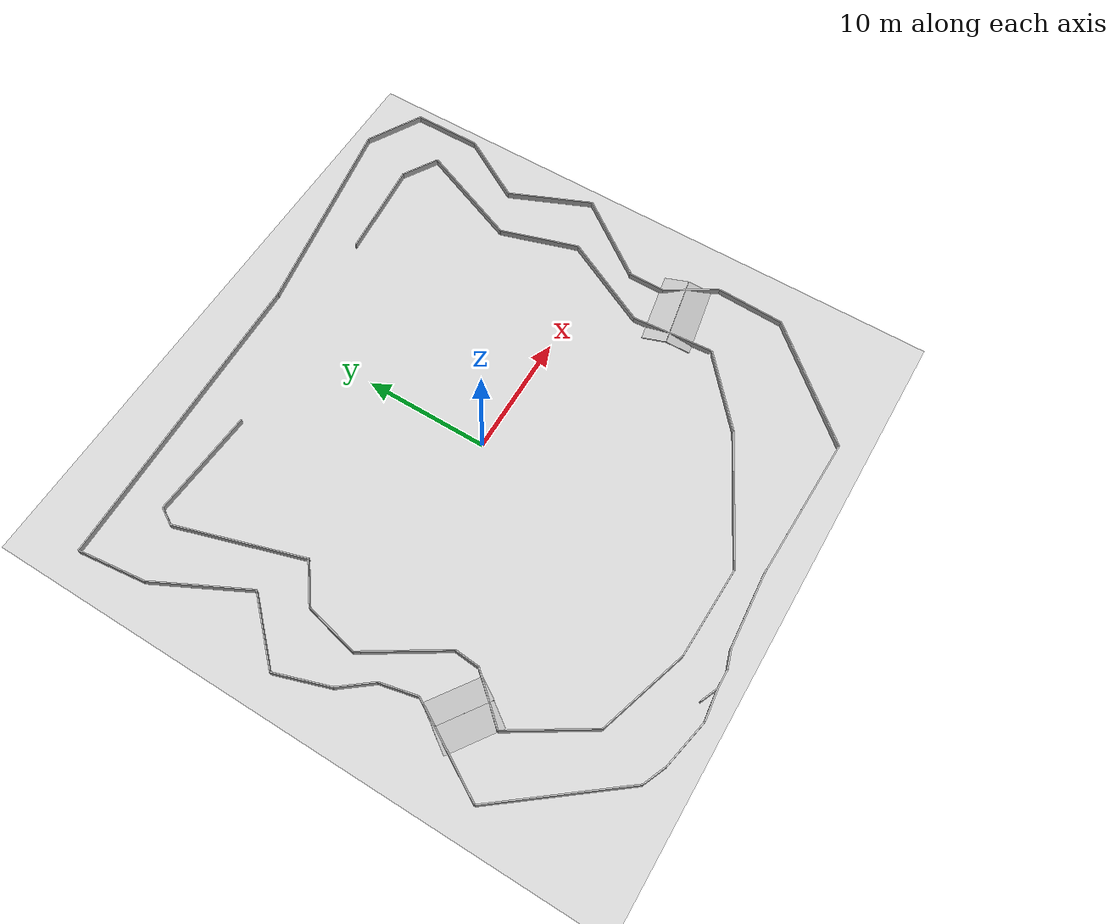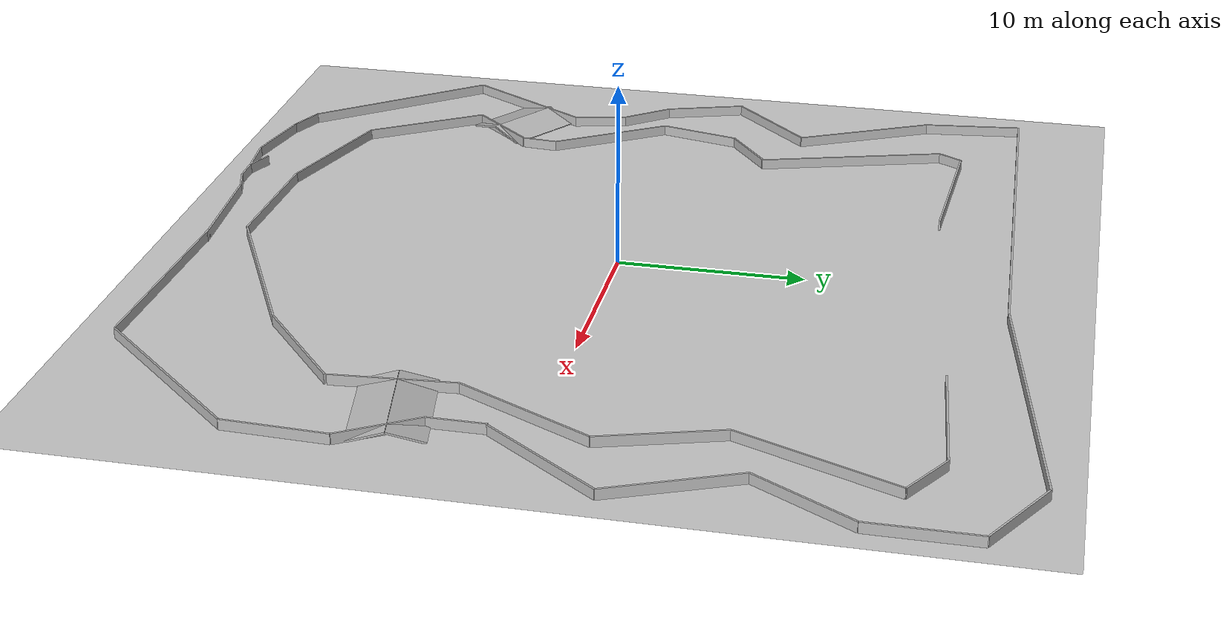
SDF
<sdf version="1.4">
 <world name="default">
  <model name="igvc_basic_ground">
   <static>1</static>
   <link name="link">
    <collision name="collision">
     <geometry><plane><normal>0 0 1</normal><size>50 50</size></plane></geometry>
     <surface><friction><ode><mu>100</mu><mu2>50</mu2></ode></friction></surface>
    </collision>
    <visual name="visual">
     <cast_shadows>0</cast_shadows>
     <geometry><plane><normal>0 0 1</normal><size>50 50</size></plane></geometry>
     <material>
      <script>
       <uri>model://igvc_basic_ground/materials/scripts</uri>
       <uri>model://igvc_basic_ground/materials/textures</uri>
       <name>igvc_basic_ground/Image</name>
      </script>
     </material>
    </visual>
    <velocity_decay><linear>0</linear><angular>0</angular></velocity_decay>
   </link>
  </model>
  <light name="sun" type="directional">
   <pose>0 0 10 0 -0 0</pose>
   <diffuse>0.8 0.8 0.8 1</diffuse>
   <specular>0.2 0.2 0.2 1</specular>
   <attenuation>
    <range>1000</range>
    <constant>0.9</constant>
    <linear>0.01</linear>
    <quadratic>0.001</quadratic>
   </attenuation>
   <direction>-0.5 0.1 -0.9</direction>
  </light>
  <physics type="ode">
   <max_step_size>0.001</max_step_size>
   <real_time_factor>1</real_time_factor>
   <real_time_update_rate>1000</real_time_update_rate>
   <gravity>0 0 -9.8</gravity>
  </physics>
  <scene><ambient>0.4 0.4 0.4 1</ambient><background>0.7 0.7 0.7 1</background><shadows>1</shadows></scene>
  <spherical_coordinates>
   <surface_model>EARTH_WGS84</surface_model>
   <latitude_deg>0</latitude_deg>
   <longitude_deg>0</longitude_deg>
   <elevation>0</elevation>
   <heading_deg>0</heading_deg>
  </spherical_coordinates>
  <model name="ramp1_up">
   <static>true</static>
   <pose>-18.4 -10.4 0.2 0.2612 0 -0.6</pose>
   <link name="link">
    <collision name="collision"><geometry><box><size>4.5 2.0 .1</size></box></geometry></collision>
    <visual name="visual"><geometry><box><size>4.5 2.0 .1</size></box></geometry></visual>
   </link>
  </model>
  <model name="ramp1_down">
   <static>true</static>
   <pose>-17.3 -8.8414 0.2 0.2612 0 2.5416</pose>
   <link name="link">
    <collision name="collision"><geometry><box><size>4.5 2.0 .1</size></box></geometry></collision>
    <visual name="visual"><geometry><box><size>4.5 2.0 .1</size></box></geometry></visual>
   </link>
  </model>
  <model name="ramp2_up">
   <static>true</static>
   <pose>17.6547 -6.1 0.2 0.2612 0 -2.962</pose>
   <link name="link">
    <collision name="collision"><geometry><box><size>6 2.0 0.1</size></box></geometry></collision>
    <visual name="visual"><geometry><box><size>6 2.0 .1</size></box></geometry></visual>
   </link>
  </model>
  <model name="ramp2_down">
   <static>true</static>
   <pose>18 -8 0.2 0.2612 0 0.18</pose>
   <link name="link">
    <collision name="collision"><geometry><box><size>6 2.0 0.1</size></box></geometry></collision>
    <visual name="visual"><geometry><box><size>6 2.0 0.1</size></box></geometry></visual>
   </link>
  </model>
  <model name="outer_wall_1">
   <static>true</static>
   <pose>-1.2 -22.6 0 0 0 0.07</pose>
   <link name="link">
    <collision name="collision"><geometry><box><size>6.5 0.1 1</size></box></geometry></collision>
    <visual name="visual"><geometry><box><size>6.5 0.1 1</size></box></geometry></visual>
   </link>
  </model>
  <model name="outer_wall_2">
   <static>true</static>
   <pose>-5.15 -23.05 0 0 0 0.3</pose>
   <link name="link">
    <collision name="collision"><geometry><box><size>1.5 0.1 1</size></box></geometry></collision>
    <visual name="visual"><geometry><box><size>1.5 0.1 1</size></box></geometry></visual>
   </link>
  </model>
  <model name="outer_wall_3">
   <static>true</static>
   <pose>-6.61 -23.29 0 0 0 0.02</pose>
   <link name="link">
    <collision name="collision"><geometry><box><size>1.5 0.1 1</size></box></geometry></collision>
    <visual name="visual"><geometry><box><size>1.5 0.1 1</size></box></geometry></visual>
   </link>
  </model>
  <model name="outer_wall_4">
   <static>true</static>
   <pose>-8.05 -23.01 0 0 0 -0.4</pose>
   <link name="link">
    <collision name="collision"><geometry><box><size>1.5 0.1 1</size></box></geometry></collision>
    <visual name="visual"><geometry><box><size>1.5 0.1 1</size></box></geometry></visual>
   </link>
  </model>
  <model name="outer_wall_5">
   <static>true</static>
   <pose>-8.6 -23.44 0 0 0 0.11</pose>
   <link name="link">
    <collision name="collision"><geometry><box><size>2.5 0.1 1</size></box></geometry></collision>
    <visual name="visual"><geometry><box><size>2.5 0.1 1</size></box></geometry></visual>
   </link>
  </model>
  <model name="outer_wall_6">
   <static>true</static>
   <pose>-11.8 -23.18 0 0 0 -0.2</pose>
   <link name="link">
    <collision name="collision"><geometry><box><size>4 0.1 1</size></box></geometry></collision>
    <visual name="visual"><geometry><box><size>4 0.1 1</size></box></geometry></visual>
   </link>
  </model>
  <model name="outer_wall_7">
   <static>true</static>
   <pose>-14.68 -22.39 0 0 0 -0.4</pose>
   <link name="link">
    <collision name="collision"><geometry><box><size>2 0.1 1</size></box></geometry></collision>
    <visual name="visual"><geometry><box><size>2 0.1 1</size></box></geometry></visual>
   </link>
  </model>
  <model name="outer_wall_8">
   <static>true</static>
   <pose>-19.02 -17.69 0 0 0 -0.9</pose>
   <link name="link">
    <collision name="collision"><geometry><box><size>11 0.1 1</size></box></geometry></collision>
    <visual name="visual"><geometry><box><size>11 0.1 1</size></box></geometry></visual>
   </link>
  </model>
  <model name="outer_wall_9">
   <static>true</static>
   <pose>-20.42 -9.93 0 0 0 -2.1</pose>
   <link name="link">
    <collision name="collision"><geometry><box><size>8 0.1 1</size></box></geometry></collision>
    <visual name="visual"><geometry><box><size>8 0.1 1</size></box></geometry></visual>
   </link>
  </model>
  <model name="outer_wall_10">
   <static>true</static>
   <pose>-18.73 -5.01 0 0 0 -1.35</pose>
   <link name="link">
    <collision name="collision"><geometry><box><size>3 0.1 1</size></box></geometry></collision>
    <visual name="visual"><geometry><box><size>3 0.1 1</size></box></geometry></visual>
   </link>
  </model>
  <model name="outer_wall_11">
   <static>true</static>
   <pose>-19.99 -2.37 0 0 0 -0.9</pose>
   <link name="link">
    <collision name="collision"><geometry><box><size>3 0.1 1</size></box></geometry></collision>
    <visual name="visual"><geometry><box><size>3 0.1 1</size></box></geometry></visual>
   </link>
  </model>
  <model name="outer_wall_12">
   <static>true</static>
   <pose>-21.63 0.94 0 0 0 -1.25</pose>
   <link name="link">
    <collision name="collision"><geometry><box><size>4.5 0.1 1</size></box></geometry></collision>
    <visual name="visual"><geometry><box><size>4.5 0.1 1</size></box></geometry></visual>
   </link>
  </model>
  <model name="outer_wall_13">
   <static>true</static>
   <pose>-20.23 5.21 0 0 0 -2.35</pose>
   <link name="link">
    <collision name="collision"><geometry><box><size>6 0.1 1</size></box></geometry></collision>
    <visual name="visual"><geometry><box><size>6 0.1 1</size></box></geometry></visual>
   </link>
  </model>
  <model name="outer_wall_14">
   <static>true</static>
   <pose>-19.9 10.9 0 0 0 -1.1</pose>
   <link name="link">
    <collision name="collision"><geometry><box><size>8 0.1 1</size></box></geometry></collision>
    <visual name="visual"><geometry><box><size>8 0.1 1</size></box></geometry></visual>
   </link>
  </model>
  <model name="outer_wall_15">
   <static>true</static>
   <pose>-22.04 17.19 0 0 0 -1.45</pose>
   <link name="link">
    <collision name="collision"><geometry><box><size>5.5 0.1 1</size></box></geometry></collision>
    <visual name="visual"><geometry><box><size>5.5 0.1 1</size></box></geometry></visual>
   </link>
  </model>
  <model name="outer_wall_16">
   <static>true</static>
   <pose>-9.88 20.31 0 0 0 -3.11</pose>
   <link name="link">
    <collision name="collision"><geometry><box><size>25 0.1 1</size></box></geometry></collision>
    <visual name="visual"><geometry><box><size>25 0.1 1</size></box></geometry></visual>
   </link>
  </model>
  <model name="outer_wall_17">
   <static>true</static>
   <pose>11.00 22.07 0 0 0 -2.98</pose>
   <link name="link">
    <collision name="collision"><geometry><box><size>17 0.1 1</size></box></geometry></collision>
    <visual name="visual"><geometry><box><size>17 0.1 1</size></box></geometry></visual>
   </link>
  </model>
  <model name="outer_wall_18">
   <static>true</static>
   <pose>21.57 22.22 0 0 0 -3.65</pose>
   <link name="link">
    <collision name="collision"><geometry><box><size>5 0.1 1</size></box></geometry></collision>
    <visual name="visual"><geometry><box><size>5 0.1 1</size></box></geometry></visual>
   </link>
  </model>
  <model name="outer_wall_19">
   <static>true</static>
   <pose>23.76 18.25 0 0 0 -4.71</pose>
   <link name="link">
    <collision name="collision"><geometry><box><size>5.5 0.1 1</size></box></geometry></collision>
    <visual name="visual"><geometry><box><size>5.5 0.1 1</size></box></geometry></visual>
   </link>
  </model>
  <model name="outer_wall_20">
   <static>true</static>
   <pose>22.26 12.91 0 0 0 -5.24</pose>
   <link name="link">
    <collision name="collision"><geometry><box><size>6 0.1 1</size></box></geometry></collision>
    <visual name="visual"><geometry><box><size>6 0.1 1</size></box></geometry></visual>
   </link>
  </model>
  <model name="outer_wall_21">
   <static>true</static>
   <pose>22.15 7.11 0 0 0 -4.3</pose>
   <link name="link">
    <collision name="collision"><geometry><box><size>7 0.1 1</size></box></geometry></collision>
    <visual name="visual"><geometry><box><size>7 0.1 1</size></box></geometry></visual>
   </link>
  </model>
  <model name="outer_wall_22">
   <static>true</static>
   <pose>21.32 0.89 0 0 0 -5.35</pose>
   <link name="link">
    <collision name="collision"><geometry><box><size>7.5 0.1 1</size></box></geometry></collision>
    <visual name="visual"><geometry><box><size>7.5 0.1 1</size></box></geometry></visual>
   </link>
  </model>
  <model name="outer_wall_23">
   <static>true</static>
   <pose>19.01 -3.62 0 0 0 -4.71</pose>
   <link name="link">
    <collision name="collision"><geometry><box><size>3 0.1 1</size></box></geometry></collision>
    <visual name="visual"><geometry><box><size>3 0.1 1</size></box></geometry></visual>
   </link>
  </model>
  <model name="outer_wall_24">
   <static>true</static>
   <pose>20.21 -7.02 0 0 0 -4.15</pose>
   <link name="link">
    <collision name="collision"><geometry><box><size>4.5 0.1 1</size></box></geometry></collision>
    <visual name="visual"><geometry><box><size>4.5 0.1 1</size></box></geometry></visual>
   </link>
  </model>
  <model name="outer_wall_25">
   <static>true</static>
   <pose>21.31 -11.67 0 0 0 -4.75</pose>
   <link name="link">
    <collision name="collision"><geometry><box><size>5.5 0.1 1</size></box></geometry></collision>
    <visual name="visual"><geometry><box><size>5.5 0.1 1</size></box></geometry></visual>
   </link>
  </model>
  <model name="outer_wall_26">
   <static>true</static>
   <pose>17.42 -18.58 0 0 0 -5.45</pose>
   <link name="link">
    <collision name="collision"><geometry><box><size>11.25 0.1 1</size></box></geometry></collision>
    <visual name="visual"><geometry><box><size>11.25 0.1 1</size></box></geometry></visual>
   </link>
  </model>
  <model name="outer_wall_27">
   <static>true</static>
   <pose>7.64 -22.57 0 0 0 -6.312</pose>
   <link name="link">
    <collision name="collision"><geometry><box><size>12 0.1 1</size></box></geometry></collision>
    <visual name="visual"><geometry><box><size>12 0.1 1</size></box></geometry></visual>
   </link>
  </model>
  <model name="inner_wall_1">
   <static>true</static>
   <pose>13.8 18.5 0 0 0 3.23</pose>
   <link name="link">
    <collision name="collision"><geometry><box><size>8 0.1 1</size></box></geometry></collision>
    <visual name="visual"><geometry><box><size>8 0.1 1</size></box></geometry></visual>
   </link>
  </model>
  <model name="inner_wall_2">
   <static>true</static>
   <pose>19.19 18.05 0 0 0 2.61</pose>
   <link name="link">
    <collision name="collision"><geometry><box><size>3.25 0.1 1</size></box></geometry></collision>
    <visual name="visual"><geometry><box><size>3.25 0.1 1</size></box></geometry></visual>
   </link>
  </model>
  <model name="inner_wall_3">
   <static>true</static>
   <pose>18.88 13.07 0 0 0 1.18</pose>
   <link name="link">
    <collision name="collision"><geometry><box><size>9 0.1 1</size></box></geometry></collision>
    <visual name="visual"><geometry><box><size>9 0.1 1</size></box></geometry></visual>
   </link>
  </model>
  <model name="inner_wall_4">
   <static>true</static>
   <pose>18.15 5.81 0 0 0 1.88</pose>
   <link name="link">
    <collision name="collision"><geometry><box><size>6.5 0.1 1</size></box></geometry></collision>
    <visual name="visual"><geometry><box><size>6.5 0.1 1</size></box></geometry></visual>
   </link>
  </model>
  <model name="inner_wall_5">
   <static>true</static>
   <pose>17.32 -0.85 0 0 0 1.1</pose>
   <link name="link">
    <collision name="collision"><geometry><box><size>8 0.1 1</size></box></geometry></collision>
    <visual name="visual"><geometry><box><size>8 0.1 1</size></box></geometry></visual>
   </link>
  </model>
  <model name="inner_wall_6">
   <static>true</static>
   <pose>15.76 -7.65 0 0 0 1.65</pose>
   <link name="link">
    <collision name="collision"><geometry><box><size>6.5 0.1 1</size></box></geometry></collision>
    <visual name="visual"><geometry><box><size>6.5 0.1 1</size></box></geometry></visual>
   </link>
  </model>
  <model name="inner_wall_7">
   <static>true</static>
   <pose>13.34 -13.25 0 0 0 0.7</pose>
   <link name="link">
    <collision name="collision"><geometry><box><size>7 0.1 1</size></box></geometry></collision>
    <visual name="visual"><geometry><box><size>7 0.1 1</size></box></geometry></visual>
   </link>
  </model>
  <model name="inner_wall_8">
   <static>true</static>
   <pose>5.76 -17.99 0 0 0 0.47</pose>
   <link name="link">
    <collision name="collision"><geometry><box><size>11 0.1 1</size></box></geometry></collision>
    <visual name="visual"><geometry><box><size>11 0.1 1</size></box></geometry></visual>
   </link>
  </model>
  <model name="inner_wall_9">
   <static>true</static>
   <pose>-2.89 -20.37 0 0 0 -0.03</pose>
   <link name="link">
    <collision name="collision"><geometry><box><size>7.5 0.1 1</size></box></geometry></collision>
    <visual name="visual"><geometry><box><size>7.5 0.1 1</size></box></geometry></visual>
   </link>
  </model>
  <model name="inner_wall_10">
   <static>true</static>
   <pose>-10.22 -19.14 0 0 0 -0.30</pose>
   <link name="link">
    <collision name="collision"><geometry><box><size>7.5 0.1 1</size></box></geometry></collision>
    <visual name="visual"><geometry><box><size>7.5 0.1 1</size></box></geometry></visual>
   </link>
  </model>
  <model name="inner_wall_11">
   <static>true</static>
   <pose>-15.69 -15.09 0 0 0 -1</pose>
   <link name="link">
    <collision name="collision"><geometry><box><size>7 0.1 1</size></box></geometry></collision>
    <visual name="visual"><geometry><box><size>7 0.1 1</size></box></geometry></visual>
   </link>
  </model>
  <model name="inner_wall_12">
   <static>true</static>
   <pose>-16.08 -10.47 0 0 0 -2.3</pose>
   <link name="link">
    <collision name="collision"><geometry><box><size>4.5 0.1 1</size></box></geometry></collision>
    <visual name="visual"><geometry><box><size>4.5 0.1 1</size></box></geometry></visual>
   </link>
  </model>
  <model name="inner_wall_13">
   <static>true</static>
   <pose>-14.5 -7.8 0 0 0 -1.65</pose>
   <link name="link">
    <collision name="collision"><geometry><box><size>2 0.1 1</size></box></geometry></collision>
    <visual name="visual"><geometry><box><size>2 0.1 1</size></box></geometry></visual>
   </link>
  </model>
  <model name="inner_wall_14">
   <static>true</static>
   <pose>-16.18 -4.07 0 0 0 -1</pose>
   <link name="link">
    <collision name="collision"><geometry><box><size>6.5 0.1 1</size></box></geometry></collision>
    <visual name="visual"><geometry><box><size>6.5 0.1 1</size></box></geometry></visual>
   </link>
  </model>
  <model name="inner_wall_15">
   <static>true</static>
   <pose>-16.31 -3.86 0 0 0 -1</pose>
   <link name="link">
    <collision name="collision"><geometry><box><size>7 0.1 1</size></box></geometry></collision>
    <visual name="visual"><geometry><box><size>7 0.1 1</size></box></geometry></visual>
   </link>
  </model>
  <model name="inner_wall_16">
   <static>true</static>
   <pose>-17.69 1.28 0 0 0 -1.8</pose>
   <link name="link">
    <collision name="collision"><geometry><box><size>4.5 0.1 1</size></box></geometry></collision>
    <visual name="visual"><geometry><box><size>4.5 0.1 1</size></box></geometry></visual>
   </link>
  </model>
  <model name="inner_wall_17">
   <static>true</static>
   <pose>-15.78 4.52 0 0 0 -2.5</pose>
   <link name="link">
    <collision name="collision"><geometry><box><size>3.5 0.1 1</size></box></geometry></collision>
    <visual name="visual"><geometry><box><size>3.5 0.1 1</size></box></geometry></visual>
   </link>
  </model>
  <model name="inner_wall_18">
   <static>true</static>
   <pose>-15.83 10.58 0 0 0 -1.27</pose>
   <link name="link">
    <collision name="collision"><geometry><box><size>10.5 0.1 1</size></box></geometry></collision>
    <visual name="visual"><geometry><box><size>10.5 0.1 1</size></box></geometry></visual>
   </link>
  </model>
  <model name="inner_wall_19">
   <static>true</static>
   <pose>-17.01 16.24 0 0 0 -2.1</pose>
   <link name="link">
    <collision name="collision"><geometry><box><size>1.5 0.1 1</size></box></geometry></collision>
    <visual name="visual"><geometry><box><size>1.5 0.1 1</size></box></geometry></visual>
   </link>
  </model>
  <model name="inner_wall_20">
   <static>true</static>
   <pose>-12.26 16.63 0 0 0 -3.2</pose>
   <link name="link">
    <collision name="collision"><geometry><box><size>8.75 0.1 1</size></box></geometry></collision>
    <visual name="visual"><geometry><box><size>8.75 0.1 1</size></box></geometry></visual>
   </link>
  </model>
 </world>
</sdf>
